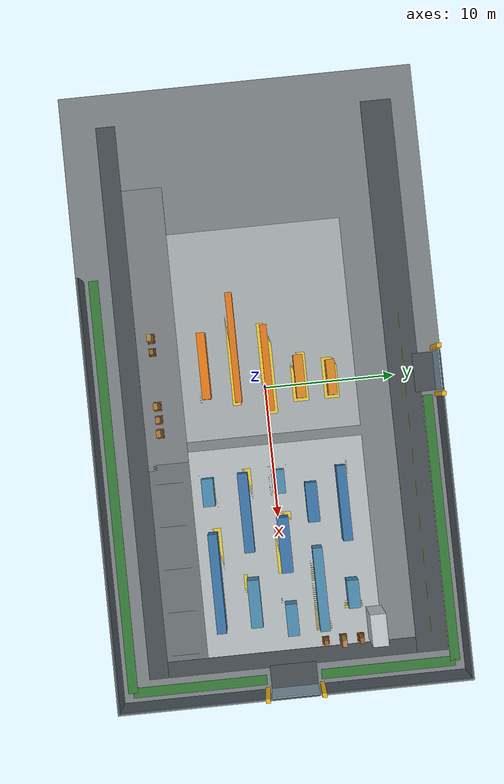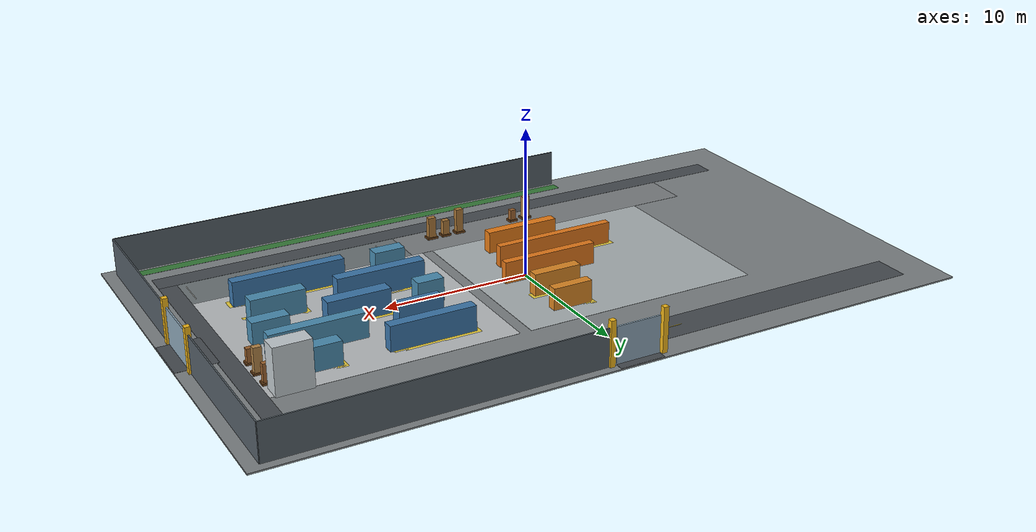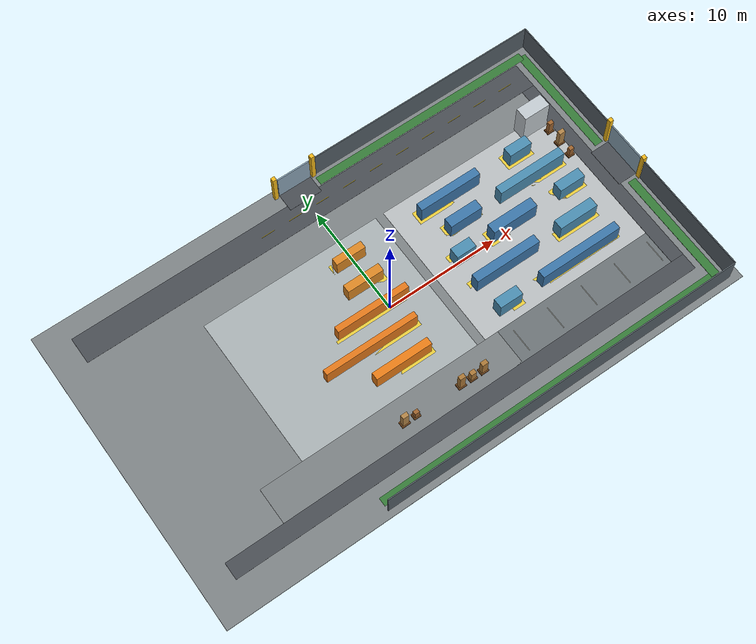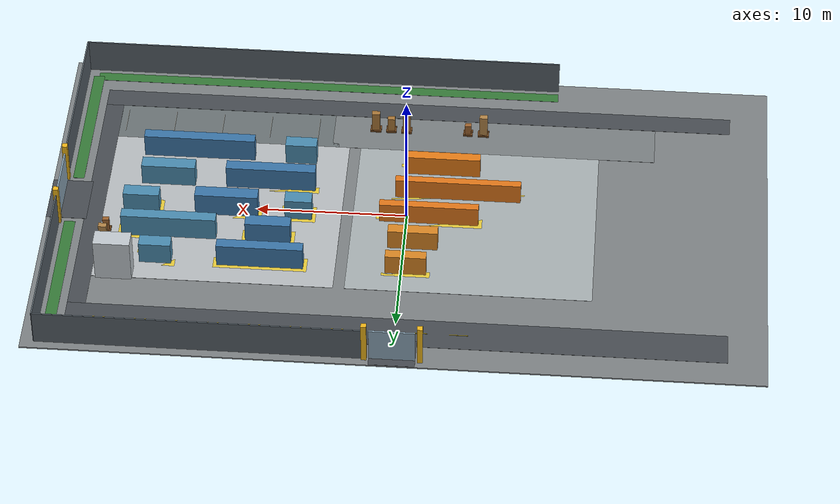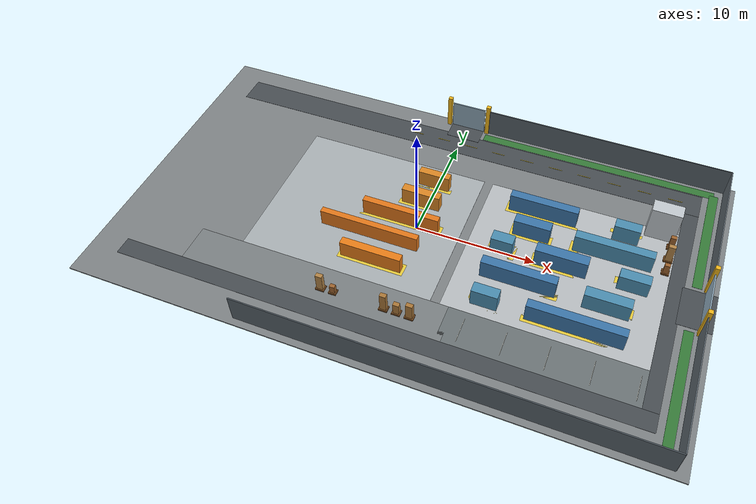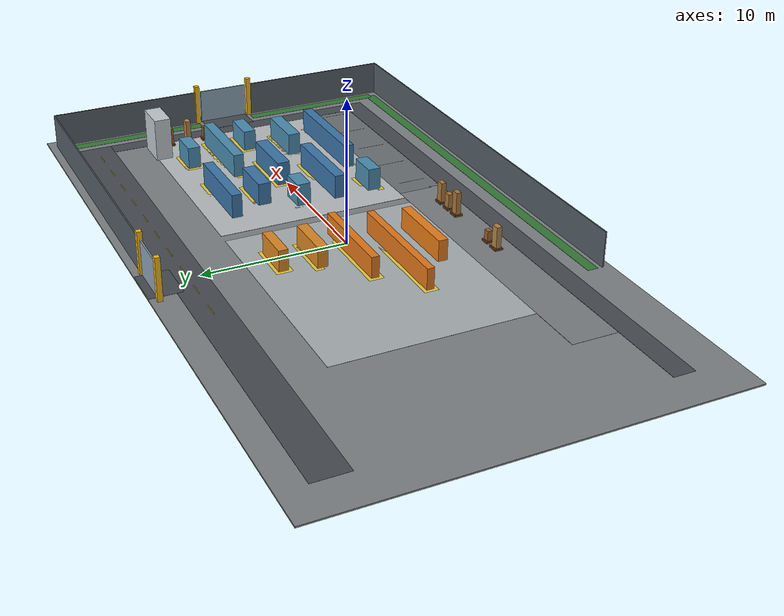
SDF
<sdf version="1.7">
 <world name="crtt_layout_demo">
  <include><uri>model://sun</uri></include>
  <model name="site_floor">
   <static>true</static>
   <pose>0 0 -0.05 0 0 0</pose>
   <link name="floor">
    <collision name="collision">
     <geometry><box><size>48.0 27.599999999999998 0.10</size></box></geometry>
    </collision>
    <visual name="visual">
     <geometry><box><size>48.0 27.599999999999998 0.10</size></box></geometry>
     <material><ambient>0.49 0.51 0.52 1</ambient><diffuse>0.49 0.51 0.52 1</diffuse></material>
    </visual>
   </link>
  </model>
  <model name="central_production">
   <static>true</static>
   <pose>-4.5 0.3 0.012 0 0 0</pose>
   <link name="marking">
    <visual name="visual">
     <geometry><box><size>16.2 13.5 0.012</size></box></geometry>
     <material><ambient>0.66 0.69 0.70 1</ambient><diffuse>0.66 0.69 0.70 1</diffuse></material>
    </visual>
   </link>
  </model>
  <model name="east_fabrication">
   <static>true</static>
   <pose>12.6 0.3 0.012 0 0 0</pose>
   <link name="marking">
    <visual name="visual">
     <geometry><box><size>16.5 13.5 0.012</size></box></geometry>
     <material><ambient>0.72 0.74 0.75 1</ambient><diffuse>0.72 0.74 0.75 1</diffuse></material>
    </visual>
   </link>
  </model>
  <model name="south_service_pad">
   <static>true</static>
   <pose>-5.3999999999999995 -8.7 0.012 0 0 0</pose>
   <link name="marking">
    <visual name="visual">
     <geometry><box><size>21.9 4.5 0.012</size></box></geometry>
     <material><ambient>0.48 0.50 0.51 1</ambient><diffuse>0.48 0.50 0.51 1</diffuse></material>
    </visual>
   </link>
  </model>
  <model name="southeast_parking">
   <static>true</static>
   <pose>12.9 -8.7 0.012 0 0 0</pose>
   <link name="marking">
    <visual name="visual">
     <geometry><box><size>15.6 4.5 0.012</size></box></geometry>
     <material><ambient>0.42 0.45 0.46 1</ambient><diffuse>0.42 0.45 0.46 1</diffuse></material>
    </visual>
   </link>
  </model>
  <model name="north_access_road">
   <static>true</static>
   <pose>0.0 10.799999999999999 0.025 0 0 0</pose>
   <link name="marking">
    <visual name="visual">
     <geometry><box><size>42.9 2.4 0.012</size></box></geometry>
     <material><ambient>0.28 0.30 0.32 1</ambient><diffuse>0.28 0.30 0.32 1</diffuse></material>
    </visual>
   </link>
  </model>
  <model name="east_perimeter_path">
   <static>true</static>
   <pose>20.849999999999998 0.0 0.025 0 0 0</pose>
   <link name="marking">
    <visual name="visual">
     <geometry><box><size>1.2 19.2 0.012</size></box></geometry>
     <material><ambient>0.28 0.30 0.32 1</ambient><diffuse>0.28 0.30 0.32 1</diffuse></material>
    </visual>
   </link>
  </model>
  <model name="south_perimeter_path">
   <static>true</static>
   <pose>0.0 -10.35 0.025 0 0 0</pose>
   <link name="marking">
    <visual name="visual">
     <geometry><box><size>42.9 1.5 0.012</size></box></geometry>
     <material><ambient>0.28 0.30 0.32 1</ambient><diffuse>0.28 0.30 0.32 1</diffuse></material>
    </visual>
   </link>
  </model>
  <model name="green_north_east">
   <static>true</static>
   <pose>12.075 12.45 0.036 0 0 0</pose>
   <link name="marking">
    <visual name="visual">
     <geometry><box><size>20.55 0.75 0.012</size></box></geometry>
     <material><ambient>0.21 0.48 0.22 1</ambient><diffuse>0.21 0.48 0.22 1</diffuse></material>
    </visual>
   </link>
  </model>
  <model name="green_east_north">
   <static>true</static>
   <pose>22.349999999999998 7.2749999999999995 0.036 0 0 0</pose>
   <link name="marking">
    <visual name="visual">
     <geometry><box><size>0.75 10.35 0.012</size></box></geometry>
     <material><ambient>0.21 0.48 0.22 1</ambient><diffuse>0.21 0.48 0.22 1</diffuse></material>
    </visual>
   </link>
  </model>
  <model name="green_east_south">
   <static>true</static>
   <pose>22.349999999999998 -7.2749999999999995 0.036 0 0 0</pose>
   <link name="marking">
    <visual name="visual">
     <geometry><box><size>0.75 10.35 0.012</size></box></geometry>
     <material><ambient>0.21 0.48 0.22 1</ambient><diffuse>0.21 0.48 0.22 1</diffuse></material>
    </visual>
   </link>
  </model>
  <model name="green_south_east">
   <static>true</static>
   <pose>6.375 -12.45 0.036 0 0 0</pose>
   <link name="marking">
    <visual name="visual">
     <geometry><box><size>31.95 0.75 0.012</size></box></geometry>
     <material><ambient>0.21 0.48 0.22 1</ambient><diffuse>0.21 0.48 0.22 1</diffuse></material>
    </visual>
   </link>
  </model>
  <model name="north_entry_road">
   <static>true</static>
   <pose>0.0 12.674999999999999 0.05 0 0 0</pose>
   <link name="marking">
    <visual name="visual">
     <geometry><box><size>3.0 2.25 0.012</size></box></geometry>
     <material><ambient>0.28 0.30 0.32 1</ambient><diffuse>0.28 0.30 0.32 1</diffuse></material>
    </visual>
   </link>
  </model>
  <model name="east_entry_road">
   <static>true</static>
   <pose>22.65 0.0 0.05 0 0 0</pose>
   <link name="marking">
    <visual name="visual">
     <geometry><box><size>2.6999999999999997 3.5999999999999996 0.012</size></box></geometry>
     <material><ambient>0.28 0.30 0.32 1</ambient><diffuse>0.28 0.30 0.32 1</diffuse></material>
    </visual>
   </link>
  </model>
  <model name="north_fence_east">
   <static>true</static>
   <pose>12.45 13.2 1.25 0 0 0</pose>
   <link name="link">
    <collision name="collision">
     <geometry><box><size>21.3 0.09 2.5</size></box></geometry>
     <surface><friction><ode><mu>0.9</mu><mu2>0.9</mu2></ode></friction></surface>
    </collision>
    <visual name="visual">
     <geometry><box><size>21.3 0.09 2.5</size></box></geometry>
     <material><ambient>0.33 0.37 0.40 1</ambient><diffuse>0.33 0.37 0.40 1</diffuse></material>
    </visual>
   </link>
  </model>
  <model name="south_fence_east">
   <static>true</static>
   <pose>6.75 -13.2 1.25 0 0 0</pose>
   <link name="link">
    <collision name="collision">
     <geometry><box><size>32.699999999999996 0.09 2.5</size></box></geometry>
     <surface><friction><ode><mu>0.9</mu><mu2>0.9</mu2></ode></friction></surface>
    </collision>
    <visual name="visual">
     <geometry><box><size>32.699999999999996 0.09 2.5</size></box></geometry>
     <material><ambient>0.33 0.37 0.40 1</ambient><diffuse>0.33 0.37 0.40 1</diffuse></material>
    </visual>
   </link>
  </model>
  <model name="east_fence_south">
   <static>true</static>
   <pose>23.099999999999998 -7.6499999999999995 1.25 0 0 0</pose>
   <link name="link">
    <collision name="collision">
     <geometry><box><size>0.09 11.1 2.5</size></box></geometry>
     <surface><friction><ode><mu>0.9</mu><mu2>0.9</mu2></ode></friction></surface>
    </collision>
    <visual name="visual">
     <geometry><box><size>0.09 11.1 2.5</size></box></geometry>
     <material><ambient>0.33 0.37 0.40 1</ambient><diffuse>0.33 0.37 0.40 1</diffuse></material>
    </visual>
   </link>
  </model>
  <model name="east_fence_north">
   <static>true</static>
   <pose>23.099999999999998 7.6499999999999995 1.25 0 0 0</pose>
   <link name="link">
    <collision name="collision">
     <geometry><box><size>0.09 11.1 2.5</size></box></geometry>
     <surface><friction><ode><mu>0.9</mu><mu2>0.9</mu2></ode></friction></surface>
    </collision>
    <visual name="visual">
     <geometry><box><size>0.09 11.1 2.5</size></box></geometry>
     <material><ambient>0.33 0.37 0.40 1</ambient><diffuse>0.33 0.37 0.40 1</diffuse></material>
    </visual>
   </link>
  </model>
  <model name="northeast_service_building">
   <static>true</static>
   <pose>18.75 6.6 1.55 0 0 0</pose>
   <link name="link">
    <collision name="collision">
     <geometry><box><size>2.4 1.2 3.1</size></box></geometry>
     <surface><friction><ode><mu>0.9</mu><mu2>0.9</mu2></ode></friction></surface>
    </collision>
    <visual name="visual">
     <geometry><box><size>2.4 1.2 3.1</size></box></geometry>
     <material><ambient>0.76 0.79 0.81 1</ambient><diffuse>0.76 0.79 0.81 1</diffuse></material>
    </visual>
   </link>
  </model>
  <model name="north_gate_west_post">
   <static>true</static>
   <pose>-1.7999999999999998 13.2 1.5 0 0 0</pose>
   <link name="link">
    <collision name="collision">
     <geometry><box><size>0.35 0.35 3.0</size></box></geometry>
     <surface><friction><ode><mu>0.9</mu><mu2>0.9</mu2></ode></friction></surface>
    </collision>
    <visual name="visual">
     <geometry><box><size>0.35 0.35 3.0</size></box></geometry>
     <material><ambient>0.95 0.72 0.10 1</ambient><diffuse>0.95 0.72 0.10 1</diffuse></material>
    </visual>
   </link>
  </model>
  <model name="north_gate_east_post">
   <static>true</static>
   <pose>1.7999999999999998 13.2 1.5 0 0 0</pose>
   <link name="link">
    <collision name="collision">
     <geometry><box><size>0.35 0.35 3.0</size></box></geometry>
     <surface><friction><ode><mu>0.9</mu><mu2>0.9</mu2></ode></friction></surface>
    </collision>
    <visual name="visual">
     <geometry><box><size>0.35 0.35 3.0</size></box></geometry>
     <material><ambient>0.95 0.72 0.10 1</ambient><diffuse>0.95 0.72 0.10 1</diffuse></material>
    </visual>
   </link>
  </model>
  <model name="east_gate_south_post">
   <static>true</static>
   <pose>23.099999999999998 -2.1 1.5 0 0 0</pose>
   <link name="link">
    <collision name="collision">
     <geometry><box><size>0.35 0.35 3.0</size></box></geometry>
     <surface><friction><ode><mu>0.9</mu><mu2>0.9</mu2></ode></friction></surface>
    </collision>
    <visual name="visual">
     <geometry><box><size>0.35 0.35 3.0</size></box></geometry>
     <material><ambient>0.95 0.72 0.10 1</ambient><diffuse>0.95 0.72 0.10 1</diffuse></material>
    </visual>
   </link>
  </model>
  <model name="east_gate_north_post">
   <static>true</static>
   <pose>23.099999999999998 2.1 1.5 0 0 0</pose>
   <link name="link">
    <collision name="collision">
     <geometry><box><size>0.35 0.35 3.0</size></box></geometry>
     <surface><friction><ode><mu>0.9</mu><mu2>0.9</mu2></ode></friction></surface>
    </collision>
    <visual name="visual">
     <geometry><box><size>0.35 0.35 3.0</size></box></geometry>
     <material><ambient>0.95 0.72 0.10 1</ambient><diffuse>0.95 0.72 0.10 1</diffuse></material>
    </visual>
   </link>
  </model>
  <model name="crtt_north_gate">
   <static>false</static>
   <pose>0.0 13.2 1.25 0 0 0</pose>
   <link name="panel">
    <kinematic>true</kinematic>
    <gravity>false</gravity>
    <inertial>
     <mass>100.0</mass>
     <inertia><ixx>100.0</ixx><iyy>100.0</iyy><izz>100.0</izz><ixy>0</ixy><ixz>0</ixz><iyz>0</iyz></inertia>
    </inertial>
    <collision name="collision"><geometry><box><size>3.0 0.105 2.5</size></box></geometry></collision>
    <visual name="visual">
     <geometry><box><size>3.0 0.105 2.5</size></box></geometry>
     <material><ambient>0.55 0.65 0.72 1</ambient><diffuse>0.55 0.65 0.72 1</diffuse></material>
    </visual>
   </link>
  </model>
  <model name="crtt_east_gate">
   <static>false</static>
   <pose>23.099999999999998 0.0 1.25 0 0 0</pose>
   <link name="panel">
    <kinematic>true</kinematic>
    <gravity>false</gravity>
    <inertial>
     <mass>100.0</mass>
     <inertia><ixx>100.0</ixx><iyy>100.0</iyy><izz>100.0</izz><ixy>0</ixy><ixz>0</ixz><iyz>0</iyz></inertia>
    </inertial>
    <collision name="collision">
     <geometry><box><size>0.105 3.5999999999999996 2.5</size></box></geometry>
    </collision>
    <visual name="visual">
     <geometry><box><size>0.105 3.5999999999999996 2.5</size></box></geometry>
     <material><ambient>0.55 0.65 0.72 1</ambient><diffuse>0.55 0.65 0.72 1</diffuse></material>
    </visual>
   </link>
  </model>
  <model name="process_short_a_pad">
   <static>true</static>
   <pose>-0.3 5.1 0.012 0 0 0</pose>
   <link name="marking">
    <visual name="visual">
     <geometry><box><size>3.1799999999999997 1.1400000000000001 0.012</size></box></geometry>
     <material><ambient>0.91 0.80 0.23 1</ambient><diffuse>0.91 0.80 0.23 1</diffuse></material>
    </visual>
   </link>
  </model>
  <model name="process_short_a">
   <static>true</static>
   <pose>-0.3 5.1 0.75 0 0 0</pose>
   <link name="link">
    <collision name="collision">
     <geometry><box><size>2.6999999999999997 0.66 1.5</size></box></geometry>
     <surface><friction><ode><mu>0.9</mu><mu2>0.9</mu2></ode></friction></surface>
    </collision>
    <visual name="visual">
     <geometry><box><size>2.6999999999999997 0.66 1.5</size></box></geometry>
     <material><ambient>0.86 0.53 0.14 1</ambient><diffuse>0.86 0.53 0.14 1</diffuse></material>
    </visual>
   </link>
  </model>
  <model name="process_medium_a_pad">
   <static>true</static>
   <pose>-0.6 2.6999999999999997 0.012 0 0 0</pose>
   <link name="marking">
    <visual name="visual">
     <geometry><box><size>3.78 1.2 0.012</size></box></geometry>
     <material><ambient>0.91 0.80 0.23 1</ambient><diffuse>0.91 0.80 0.23 1</diffuse></material>
    </visual>
   </link>
  </model>
  <model name="process_medium_a">
   <static>true</static>
   <pose>-0.6 2.6999999999999997 0.75 0 0 0</pose>
   <link name="link">
    <collision name="collision">
     <geometry><box><size>3.3 0.72 1.5</size></box></geometry>
     <surface><friction><ode><mu>0.9</mu><mu2>0.9</mu2></ode></friction></surface>
    </collision>
    <visual name="visual">
     <geometry><box><size>3.3 0.72 1.5</size></box></geometry>
     <material><ambient>0.86 0.53 0.14 1</ambient><diffuse>0.86 0.53 0.14 1</diffuse></material>
    </visual>
   </link>
  </model>
  <model name="process_long_c_pad">
   <static>true</static>
   <pose>-1.5 0.3 0.012 0 0 0</pose>
   <link name="marking">
    <visual name="visual">
     <geometry><box><size>7.08 1.02 0.012</size></box></geometry>
     <material><ambient>0.91 0.80 0.23 1</ambient><diffuse>0.91 0.80 0.23 1</diffuse></material>
    </visual>
   </link>
  </model>
  <model name="process_long_c">
   <static>true</static>
   <pose>-1.5 0.3 0.75 0 0 0</pose>
   <link name="link">
    <collision name="collision">
     <geometry><box><size>6.6 0.54 1.5</size></box></geometry>
     <surface><friction><ode><mu>0.9</mu><mu2>0.9</mu2></ode></friction></surface>
    </collision>
    <visual name="visual">
     <geometry><box><size>6.6 0.54 1.5</size></box></geometry>
     <material><ambient>0.89 0.47 0.10 1</ambient><diffuse>0.89 0.47 0.10 1</diffuse></material>
    </visual>
   </link>
  </model>
  <model name="process_long_d_pad">
   <static>true</static>
   <pose>-3.3 -2.1 0.012 0 0 0</pose>
   <link name="marking">
    <visual name="visual">
     <geometry><box><size>8.88 0.9899999999999999 0.012</size></box></geometry>
     <material><ambient>0.91 0.80 0.23 1</ambient><diffuse>0.91 0.80 0.23 1</diffuse></material>
    </visual>
   </link>
  </model>
  <model name="process_long_d">
   <static>true</static>
   <pose>-3.3 -2.1 0.75 0 0 0</pose>
   <link name="link">
    <collision name="collision">
     <geometry><box><size>8.4 0.51 1.5</size></box></geometry>
     <surface><friction><ode><mu>0.9</mu><mu2>0.9</mu2></ode></friction></surface>
    </collision>
    <visual name="visual">
     <geometry><box><size>8.4 0.51 1.5</size></box></geometry>
     <material><ambient>0.89 0.47 0.10 1</ambient><diffuse>0.89 0.47 0.10 1</diffuse></material>
    </visual>
   </link>
  </model>
  <model name="process_medium_d_pad">
   <static>true</static>
   <pose>-2.1 -4.5 0.012 0 0 0</pose>
   <link name="marking">
    <visual name="visual">
     <geometry><box><size>5.58 1.1400000000000001 0.012</size></box></geometry>
     <material><ambient>0.91 0.80 0.23 1</ambient><diffuse>0.91 0.80 0.23 1</diffuse></material>
    </visual>
   </link>
  </model>
  <model name="process_medium_d">
   <static>true</static>
   <pose>-2.1 -4.5 0.75 0 0 0</pose>
   <link name="link">
    <collision name="collision">
     <geometry><box><size>5.1 0.66 1.5</size></box></geometry>
     <surface><friction><ode><mu>0.9</mu><mu2>0.9</mu2></ode></friction></surface>
    </collision>
    <visual name="visual">
     <geometry><box><size>5.1 0.66 1.5</size></box></geometry>
     <material><ambient>0.91 0.49 0.09 1</ambient><diffuse>0.91 0.49 0.09 1</diffuse></material>
    </visual>
   </link>
  </model>
  <model name="fabrication_long_a_pad">
   <static>true</static>
   <pose>9.299999999999999 5.1 0.012 0 0 0</pose>
   <link name="marking">
    <visual name="visual">
     <geometry><box><size>6.180000000000001 1.2 0.012</size></box></geometry>
     <material><ambient>0.91 0.80 0.23 1</ambient><diffuse>0.91 0.80 0.23 1</diffuse></material>
    </visual>
   </link>
  </model>
  <model name="fabrication_long_a">
   <static>true</static>
   <pose>9.299999999999999 5.1 0.85 0 0 0</pose>
   <link name="link">
    <collision name="collision">
     <geometry><box><size>5.7 0.72 1.7</size></box></geometry>
     <surface><friction><ode><mu>0.9</mu><mu2>0.9</mu2></ode></friction></surface>
    </collision>
    <visual name="visual">
     <geometry><box><size>5.7 0.72 1.7</size></box></geometry>
     <material><ambient>0.23 0.46 0.66 1</ambient><diffuse>0.23 0.46 0.66 1</diffuse></material>
    </visual>
   </link>
  </model>
  <model name="fabrication_short_a_pad">
   <static>true</static>
   <pose>16.2 5.1 0.012 0 0 0</pose>
   <link name="marking">
    <visual name="visual">
     <geometry><box><size>2.5799999999999996 1.38 0.012</size></box></geometry>
     <material><ambient>0.91 0.80 0.23 1</ambient><diffuse>0.91 0.80 0.23 1</diffuse></material>
    </visual>
   </link>
  </model>
  <model name="fabrication_short_a">
   <static>true</static>
   <pose>16.2 5.1 0.8 0 0 0</pose>
   <link name="link">
    <collision name="collision">
     <geometry><box><size>2.1 0.8999999999999999 1.6</size></box></geometry>
     <surface><friction><ode><mu>0.9</mu><mu2>0.9</mu2></ode></friction></surface>
    </collision>
    <visual name="visual">
     <geometry><box><size>2.1 0.8999999999999999 1.6</size></box></geometry>
     <material><ambient>0.29 0.55 0.69 1</ambient><diffuse>0.29 0.55 0.69 1</diffuse></material>
    </visual>
   </link>
  </model>
  <model name="fabrication_medium_a_pad">
   <static>true</static>
   <pose>9.0 2.6999999999999997 0.012 0 0 0</pose>
   <link name="marking">
    <visual name="visual">
     <geometry><box><size>3.48 1.38 0.012</size></box></geometry>
     <material><ambient>0.91 0.80 0.23 1</ambient><diffuse>0.91 0.80 0.23 1</diffuse></material>
    </visual>
   </link>
  </model>
  <model name="fabrication_medium_a">
   <static>true</static>
   <pose>9.0 2.6999999999999997 0.8 0 0 0</pose>
   <link name="link">
    <collision name="collision">
     <geometry><box><size>3.0 0.8999999999999999 1.6</size></box></geometry>
     <surface><friction><ode><mu>0.9</mu><mu2>0.9</mu2></ode></friction></surface>
    </collision>
    <visual name="visual">
     <geometry><box><size>3.0 0.8999999999999999 1.6</size></box></geometry>
     <material><ambient>0.23 0.46 0.66 1</ambient><diffuse>0.23 0.46 0.66 1</diffuse></material>
    </visual>
   </link>
  </model>
  <model name="fabrication_long_b_pad">
   <static>true</static>
   <pose>15.6 2.6999999999999997 0.012 0 0 0</pose>
   <link name="marking">
    <visual name="visual">
     <geometry><box><size>6.78 1.2299999999999998 0.012</size></box></geometry>
     <material><ambient>0.91 0.80 0.23 1</ambient><diffuse>0.91 0.80 0.23 1</diffuse></material>
    </visual>
   </link>
  </model>
  <model name="fabrication_long_b">
   <static>true</static>
   <pose>15.6 2.6999999999999997 0.85 0 0 0</pose>
   <link name="link">
    <collision name="collision">
     <geometry><box><size>6.3 0.75 1.7</size></box></geometry>
     <surface><friction><ode><mu>0.9</mu><mu2>0.9</mu2></ode></friction></surface>
    </collision>
    <visual name="visual">
     <geometry><box><size>6.3 0.75 1.7</size></box></geometry>
     <material><ambient>0.29 0.55 0.69 1</ambient><diffuse>0.29 0.55 0.69 1</diffuse></material>
    </visual>
   </link>
  </model>
  <model name="fabrication_short_b_pad">
   <static>true</static>
   <pose>7.199999999999999 0.3 0.012 0 0 0</pose>
   <link name="marking">
    <visual name="visual">
     <geometry><box><size>2.28 1.4400000000000002 0.012</size></box></geometry>
     <material><ambient>0.91 0.80 0.23 1</ambient><diffuse>0.91 0.80 0.23 1</diffuse></material>
    </visual>
   </link>
  </model>
  <model name="fabrication_short_b">
   <static>true</static>
   <pose>7.199999999999999 0.3 0.8 0 0 0</pose>
   <link name="link">
    <collision name="collision">
     <geometry><box><size>1.7999999999999998 0.96 1.6</size></box></geometry>
     <surface><friction><ode><mu>0.9</mu><mu2>0.9</mu2></ode></friction></surface>
    </collision>
    <visual name="visual">
     <geometry><box><size>1.7999999999999998 0.96 1.6</size></box></geometry>
     <material><ambient>0.29 0.55 0.69 1</ambient><diffuse>0.29 0.55 0.69 1</diffuse></material>
    </visual>
   </link>
  </model>
  <model name="fabrication_medium_b_pad">
   <static>true</static>
   <pose>12.0 0.3 0.012 0 0 0</pose>
   <link name="marking">
    <visual name="visual">
     <geometry><box><size>4.68 1.38 0.012</size></box></geometry>
     <material><ambient>0.91 0.80 0.23 1</ambient><diffuse>0.91 0.80 0.23 1</diffuse></material>
    </visual>
   </link>
  </model>
  <model name="fabrication_medium_b">
   <static>true</static>
   <pose>12.0 0.3 0.85 0 0 0</pose>
   <link name="link">
    <collision name="collision">
     <geometry><box><size>4.2 0.8999999999999999 1.7</size></box></geometry>
     <surface><friction><ode><mu>0.9</mu><mu2>0.9</mu2></ode></friction></surface>
    </collision>
    <visual name="visual">
     <geometry><box><size>4.2 0.8999999999999999 1.7</size></box></geometry>
     <material><ambient>0.23 0.46 0.66 1</ambient><diffuse>0.23 0.46 0.66 1</diffuse></material>
    </visual>
   </link>
  </model>
  <model name="fabrication_short_c_pad">
   <static>true</static>
   <pose>17.7 0.3 0.012 0 0 0</pose>
   <link name="marking">
    <visual name="visual">
     <geometry><box><size>2.88 1.38 0.012</size></box></geometry>
     <material><ambient>0.91 0.80 0.23 1</ambient><diffuse>0.91 0.80 0.23 1</diffuse></material>
    </visual>
   </link>
  </model>
  <model name="fabrication_short_c">
   <static>true</static>
   <pose>17.7 0.3 0.75 0 0 0</pose>
   <link name="link">
    <collision name="collision">
     <geometry><box><size>2.4 0.8999999999999999 1.5</size></box></geometry>
     <surface><friction><ode><mu>0.9</mu><mu2>0.9</mu2></ode></friction></surface>
    </collision>
    <visual name="visual">
     <geometry><box><size>2.4 0.8999999999999999 1.5</size></box></geometry>
     <material><ambient>0.29 0.55 0.69 1</ambient><diffuse>0.29 0.55 0.69 1</diffuse></material>
    </visual>
   </link>
  </model>
  <model name="fabrication_long_c_pad">
   <static>true</static>
   <pose>9.299999999999999 -2.4 0.012 0 0 0</pose>
   <link name="marking">
    <visual name="visual">
     <geometry><box><size>6.48 1.26 0.012</size></box></geometry>
     <material><ambient>0.91 0.80 0.23 1</ambient><diffuse>0.91 0.80 0.23 1</diffuse></material>
    </visual>
   </link>
  </model>
  <model name="fabrication_long_c">
   <static>true</static>
   <pose>9.299999999999999 -2.4 0.85 0 0 0</pose>
   <link name="link">
    <collision name="collision">
     <geometry><box><size>6.0 0.78 1.7</size></box></geometry>
     <surface><friction><ode><mu>0.9</mu><mu2>0.9</mu2></ode></friction></surface>
    </collision>
    <visual name="visual">
     <geometry><box><size>6.0 0.78 1.7</size></box></geometry>
     <material><ambient>0.23 0.46 0.66 1</ambient><diffuse>0.23 0.46 0.66 1</diffuse></material>
    </visual>
   </link>
  </model>
  <model name="fabrication_medium_c_pad">
   <static>true</static>
   <pose>16.2 -2.4 0.012 0 0 0</pose>
   <link name="marking">
    <visual name="visual">
     <geometry><box><size>4.08 1.38 0.012</size></box></geometry>
     <material><ambient>0.91 0.80 0.23 1</ambient><diffuse>0.91 0.80 0.23 1</diffuse></material>
    </visual>
   </link>
  </model>
  <model name="fabrication_medium_c">
   <static>true</static>
   <pose>16.2 -2.4 0.8 0 0 0</pose>
   <link name="link">
    <collision name="collision">
     <geometry><box><size>3.5999999999999996 0.8999999999999999 1.6</size></box></geometry>
     <surface><friction><ode><mu>0.9</mu><mu2>0.9</mu2></ode></friction></surface>
    </collision>
    <visual name="visual">
     <geometry><box><size>3.5999999999999996 0.8999999999999999 1.6</size></box></geometry>
     <material><ambient>0.29 0.55 0.69 1</ambient><diffuse>0.29 0.55 0.69 1</diffuse></material>
    </visual>
   </link>
  </model>
  <model name="fabrication_short_d_pad">
   <static>true</static>
   <pose>7.5 -5.1 0.012 0 0 0</pose>
   <link name="marking">
    <visual name="visual">
     <geometry><box><size>2.5799999999999996 1.38 0.012</size></box></geometry>
     <material><ambient>0.91 0.80 0.23 1</ambient><diffuse>0.91 0.80 0.23 1</diffuse></material>
    </visual>
   </link>
  </model>
  <model name="fabrication_short_d">
   <static>true</static>
   <pose>7.5 -5.1 0.8 0 0 0</pose>
   <link name="link">
    <collision name="collision">
     <geometry><box><size>2.1 0.8999999999999999 1.6</size></box></geometry>
     <surface><friction><ode><mu>0.9</mu><mu2>0.9</mu2></ode></friction></surface>
    </collision>
    <visual name="visual">
     <geometry><box><size>2.1 0.8999999999999999 1.6</size></box></geometry>
     <material><ambient>0.29 0.55 0.69 1</ambient><diffuse>0.29 0.55 0.69 1</diffuse></material>
    </visual>
   </link>
  </model>
  <model name="fabrication_long_d_pad">
   <static>true</static>
   <pose>14.399999999999999 -5.1 0.012 0 0 0</pose>
   <link name="marking">
    <visual name="visual">
     <geometry><box><size>7.98 1.2 0.012</size></box></geometry>
     <material><ambient>0.91 0.80 0.23 1</ambient><diffuse>0.91 0.80 0.23 1</diffuse></material>
    </visual>
   </link>
  </model>
  <model name="fabrication_long_d">
   <static>true</static>
   <pose>14.399999999999999 -5.1 0.85 0 0 0</pose>
   <link name="link">
    <collision name="collision">
     <geometry><box><size>7.5 0.72 1.7</size></box></geometry>
     <surface><friction><ode><mu>0.9</mu><mu2>0.9</mu2></ode></friction></surface>
    </collision>
    <visual name="visual">
     <geometry><box><size>7.5 0.72 1.7</size></box></geometry>
     <material><ambient>0.23 0.46 0.66 1</ambient><diffuse>0.23 0.46 0.66 1</diffuse></material>
    </visual>
   </link>
  </model>
  <model name="floor_load_11">
   <static>true</static>
   <pose>-4.6499999999999995 -8.4 0 0 0 0</pose>
   <link name="load">
    <collision name="collision">
     <pose>0 0 0.83 0 0 0</pose>
     <geometry><box><size>0.74 0.56 1.66</size></box></geometry>
    </collision>
    <visual name="wood_pallet">
     <pose>0 0 0.08 0 0 0</pose>
     <geometry><box><size>0.74 0.56 0.16</size></box></geometry>
     <material><ambient>0.43 0.26 0.10 1</ambient><diffuse>0.43 0.26 0.10 1</diffuse></material>
    </visual>
    <visual name="cargo">
     <pose>0 0 0.91 0 0 0</pose>
     <geometry><box><size>0.54 0.36 1.5</size></box></geometry>
     <material><ambient>0.70 0.52 0.28 1</ambient><diffuse>0.70 0.52 0.28 1</diffuse></material>
    </visual>
   </link>
  </model>
  <model name="floor_load_12">
   <static>true</static>
   <pose>-3.5999999999999996 -8.4 0 0 0 0</pose>
   <link name="load">
    <collision name="collision">
     <pose>0 0 0.43 0 0 0</pose>
     <geometry><box><size>0.62 0.53 0.86</size></box></geometry>
    </collision>
    <visual name="wood_pallet">
     <pose>0 0 0.08 0 0 0</pose>
     <geometry><box><size>0.62 0.53 0.16</size></box></geometry>
     <material><ambient>0.43 0.26 0.10 1</ambient><diffuse>0.43 0.26 0.10 1</diffuse></material>
    </visual>
    <visual name="cargo">
     <pose>0 0 0.51 0 0 0</pose>
     <geometry><box><size>0.42 0.33 0.7</size></box></geometry>
     <material><ambient>0.62 0.39 0.18 1</ambient><diffuse>0.62 0.39 0.18 1</diffuse></material>
    </visual>
   </link>
  </model>
  <model name="floor_load_13">
   <static>true</static>
   <pose>0.6 -8.4 0 0 0 0</pose>
   <link name="load">
    <collision name="collision">
     <pose>0 0 0.88 0 0 0</pose>
     <geometry><box><size>0.71 0.56 1.76</size></box></geometry>
    </collision>
    <visual name="wood_pallet">
     <pose>0 0 0.08 0 0 0</pose>
     <geometry><box><size>0.71 0.56 0.16</size></box></geometry>
     <material><ambient>0.43 0.26 0.10 1</ambient><diffuse>0.43 0.26 0.10 1</diffuse></material>
    </visual>
    <visual name="cargo">
     <pose>0 0 0.9600000000000001 0 0 0</pose>
     <geometry><box><size>0.51 0.36 1.6</size></box></geometry>
     <material><ambient>0.67 0.47 0.22 1</ambient><diffuse>0.67 0.47 0.22 1</diffuse></material>
    </visual>
   </link>
  </model>
  <model name="floor_load_14">
   <static>true</static>
   <pose>1.65 -8.4 0 0 0 0</pose>
   <link name="load">
    <collision name="collision">
     <pose>0 0 0.58 0 0 0</pose>
     <geometry><box><size>0.6799999999999999 0.56 1.16</size></box></geometry>
    </collision>
    <visual name="wood_pallet">
     <pose>0 0 0.08 0 0 0</pose>
     <geometry><box><size>0.6799999999999999 0.56 0.16</size></box></geometry>
     <material><ambient>0.43 0.26 0.10 1</ambient><diffuse>0.43 0.26 0.10 1</diffuse></material>
    </visual>
    <visual name="cargo">
     <pose>0 0 0.66 0 0 0</pose>
     <geometry><box><size>0.48 0.36 1.0</size></box></geometry>
     <material><ambient>0.67 0.47 0.22 1</ambient><diffuse>0.67 0.47 0.22 1</diffuse></material>
    </visual>
   </link>
  </model>
  <model name="floor_load_15">
   <static>true</static>
   <pose>2.6999999999999997 -8.4 0 0 0 0</pose>
   <link name="load">
    <collision name="collision">
     <pose>0 0 0.7799999999999999 0 0 0</pose>
     <geometry><box><size>0.74 0.56 1.5599999999999998</size></box></geometry>
    </collision>
    <visual name="wood_pallet">
     <pose>0 0 0.08 0 0 0</pose>
     <geometry><box><size>0.74 0.56 0.16</size></box></geometry>
     <material><ambient>0.43 0.26 0.10 1</ambient><diffuse>0.43 0.26 0.10 1</diffuse></material>
    </visual>
    <visual name="cargo">
     <pose>0 0 0.86 0 0 0</pose>
     <geometry><box><size>0.54 0.36 1.4</size></box></geometry>
     <material><ambient>0.67 0.47 0.22 1</ambient><diffuse>0.67 0.47 0.22 1</diffuse></material>
    </visual>
   </link>
  </model>
  <model name="floor_load_16">
   <static>true</static>
   <pose>19.8 5.3999999999999995 0 0 0 0</pose>
   <link name="load">
    <collision name="collision">
     <pose>0 0 0.6799999999999999 0 0 0</pose>
     <geometry><box><size>0.6499999999999999 0.53 1.3599999999999999</size></box></geometry>
    </collision>
    <visual name="wood_pallet">
     <pose>0 0 0.08 0 0 0</pose>
     <geometry><box><size>0.6499999999999999 0.53 0.16</size></box></geometry>
     <material><ambient>0.43 0.26 0.10 1</ambient><diffuse>0.43 0.26 0.10 1</diffuse></material>
    </visual>
    <visual name="cargo">
     <pose>0 0 0.76 0 0 0</pose>
     <geometry><box><size>0.44999999999999996 0.33 1.2</size></box></geometry>
     <material><ambient>0.62 0.39 0.18 1</ambient><diffuse>0.62 0.39 0.18 1</diffuse></material>
    </visual>
   </link>
  </model>
  <model name="floor_load_17">
   <static>true</static>
   <pose>19.8 4.05 0 0 0 0</pose>
   <link name="load">
    <collision name="collision">
     <pose>0 0 0.88 0 0 0</pose>
     <geometry><box><size>0.74 0.56 1.76</size></box></geometry>
    </collision>
    <visual name="wood_pallet">
     <pose>0 0 0.08 0 0 0</pose>
     <geometry><box><size>0.74 0.56 0.16</size></box></geometry>
     <material><ambient>0.43 0.26 0.10 1</ambient><diffuse>0.43 0.26 0.10 1</diffuse></material>
    </visual>
    <visual name="cargo">
     <pose>0 0 0.9600000000000001 0 0 0</pose>
     <geometry><box><size>0.54 0.36 1.6</size></box></geometry>
     <material><ambient>0.70 0.52 0.28 1</ambient><diffuse>0.70 0.52 0.28 1</diffuse></material>
    </visual>
   </link>
  </model>
  <model name="floor_load_18">
   <static>true</static>
   <pose>19.8 2.6999999999999997 0 0 0 0</pose>
   <link name="load">
    <collision name="collision">
     <pose>0 0 0.53 0 0 0</pose>
     <geometry><box><size>0.62 0.53 1.06</size></box></geometry>
    </collision>
    <visual name="wood_pallet">
     <pose>0 0 0.08 0 0 0</pose>
     <geometry><box><size>0.62 0.53 0.16</size></box></geometry>
     <material><ambient>0.43 0.26 0.10 1</ambient><diffuse>0.43 0.26 0.10 1</diffuse></material>
    </visual>
    <visual name="cargo">
     <pose>0 0 0.61 0 0 0</pose>
     <geometry><box><size>0.42 0.33 0.9</size></box></geometry>
     <material><ambient>0.62 0.39 0.18 1</ambient><diffuse>0.62 0.39 0.18 1</diffuse></material>
    </visual>
   </link>
  </model>
  <model name="parking_line_1">
   <static>true</static>
   <pose>6.6 -8.1 0.025 0 0 0</pose>
   <link name="marking">
    <visual name="visual">
     <geometry><box><size>0.036 2.1 0.012</size></box></geometry>
     <material><ambient>0.94 0.94 0.90 1</ambient><diffuse>0.94 0.94 0.90 1</diffuse></material>
    </visual>
   </link>
  </model>
  <model name="parking_line_2">
   <static>true</static>
   <pose>9.9 -8.1 0.025 0 0 0</pose>
   <link name="marking">
    <visual name="visual">
     <geometry><box><size>0.036 2.1 0.012</size></box></geometry>
     <material><ambient>0.94 0.94 0.90 1</ambient><diffuse>0.94 0.94 0.90 1</diffuse></material>
    </visual>
   </link>
  </model>
  <model name="parking_line_3">
   <static>true</static>
   <pose>13.2 -8.1 0.025 0 0 0</pose>
   <link name="marking">
    <visual name="visual">
     <geometry><box><size>0.036 2.1 0.012</size></box></geometry>
     <material><ambient>0.94 0.94 0.90 1</ambient><diffuse>0.94 0.94 0.90 1</diffuse></material>
    </visual>
   </link>
  </model>
  <model name="parking_line_4">
   <static>true</static>
   <pose>16.5 -8.1 0.025 0 0 0</pose>
   <link name="marking">
    <visual name="visual">
     <geometry><box><size>0.036 2.1 0.012</size></box></geometry>
     <material><ambient>0.94 0.94 0.90 1</ambient><diffuse>0.94 0.94 0.90 1</diffuse></material>
    </visual>
   </link>
  </model>
  <model name="parking_line_5">
   <static>true</static>
   <pose>19.8 -8.1 0.025 0 0 0</pose>
   <link name="marking">
    <visual name="visual">
     <geometry><box><size>0.036 2.1 0.012</size></box></geometry>
     <material><ambient>0.94 0.94 0.90 1</ambient><diffuse>0.94 0.94 0.90 1</diffuse></material>
    </visual>
   </link>
  </model>
  <model name="road_dashed_line_6">
   <static>true</static>
   <pose>-4.1400000000000015 10.799999999999999 0.045 0 0 0</pose>
   <link name="marking">
    <visual name="visual">
     <geometry><box><size>1.2 0.042 0.012</size></box></geometry>
     <material><ambient>0.96 0.82 0.12 1</ambient><diffuse>0.96 0.82 0.12 1</diffuse></material>
    </visual>
   </link>
  </model>
  <model name="road_dashed_line_7">
   <static>true</static>
   <pose>-1.5300000000000025 10.799999999999999 0.045 0 0 0</pose>
   <link name="marking">
    <visual name="visual">
     <geometry><box><size>1.2 0.042 0.012</size></box></geometry>
     <material><ambient>0.96 0.82 0.12 1</ambient><diffuse>0.96 0.82 0.12 1</diffuse></material>
    </visual>
   </link>
  </model>
  <model name="road_dashed_line_8">
   <static>true</static>
   <pose>1.0799999999999983 10.799999999999999 0.045 0 0 0</pose>
   <link name="marking">
    <visual name="visual">
     <geometry><box><size>1.2 0.042 0.012</size></box></geometry>
     <material><ambient>0.96 0.82 0.12 1</ambient><diffuse>0.96 0.82 0.12 1</diffuse></material>
    </visual>
   </link>
  </model>
  <model name="road_dashed_line_9">
   <static>true</static>
   <pose>3.689999999999999 10.799999999999999 0.045 0 0 0</pose>
   <link name="marking">
    <visual name="visual">
     <geometry><box><size>1.2 0.042 0.012</size></box></geometry>
     <material><ambient>0.96 0.82 0.12 1</ambient><diffuse>0.96 0.82 0.12 1</diffuse></material>
    </visual>
   </link>
  </model>
  <model name="road_dashed_line_10">
   <static>true</static>
   <pose>6.3 10.799999999999999 0.045 0 0 0</pose>
   <link name="marking">
    <visual name="visual">
     <geometry><box><size>1.2 0.042 0.012</size></box></geometry>
     <material><ambient>0.96 0.82 0.12 1</ambient><diffuse>0.96 0.82 0.12 1</diffuse></material>
    </visual>
   </link>
  </model>
  <model name="road_dashed_line_11">
   <static>true</static>
   <pose>8.909999999999997 10.799999999999999 0.045 0 0 0</pose>
   <link name="marking">
    <visual name="visual">
     <geometry><box><size>1.2 0.042 0.012</size></box></geometry>
     <material><ambient>0.96 0.82 0.12 1</ambient><diffuse>0.96 0.82 0.12 1</diffuse></material>
    </visual>
   </link>
  </model>
  <model name="road_dashed_line_12">
   <static>true</static>
   <pose>11.519999999999998 10.799999999999999 0.045 0 0 0</pose>
   <link name="marking">
    <visual name="visual">
     <geometry><box><size>1.2 0.042 0.012</size></box></geometry>
     <material><ambient>0.96 0.82 0.12 1</ambient><diffuse>0.96 0.82 0.12 1</diffuse></material>
    </visual>
   </link>
  </model>
  <model name="road_dashed_line_13">
   <static>true</static>
   <pose>14.129999999999997 10.799999999999999 0.045 0 0 0</pose>
   <link name="marking">
    <visual name="visual">
     <geometry><box><size>1.2 0.042 0.012</size></box></geometry>
     <material><ambient>0.96 0.82 0.12 1</ambient><diffuse>0.96 0.82 0.12 1</diffuse></material>
    </visual>
   </link>
  </model>
  <model name="road_dashed_line_14">
   <static>true</static>
   <pose>16.739999999999995 10.799999999999999 0.045 0 0 0</pose>
   <link name="marking">
    <visual name="visual">
     <geometry><box><size>1.2 0.042 0.012</size></box></geometry>
     <material><ambient>0.96 0.82 0.12 1</ambient><diffuse>0.96 0.82 0.12 1</diffuse></material>
    </visual>
   </link>
  </model>
  <model name="road_dashed_line_15">
   <static>true</static>
   <pose>19.349999999999998 10.799999999999999 0.045 0 0 0</pose>
   <link name="marking">
    <visual name="visual">
     <geometry><box><size>1.2 0.042 0.012</size></box></geometry>
     <material><ambient>0.96 0.82 0.12 1</ambient><diffuse>0.96 0.82 0.12 1</diffuse></material>
    </visual>
   </link>
  </model>
 </world>
</sdf>
